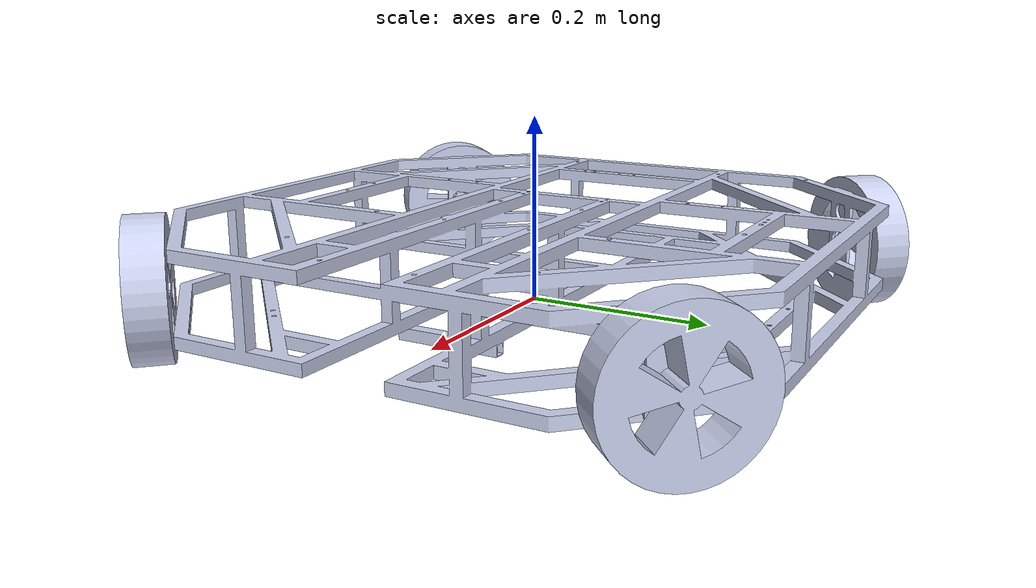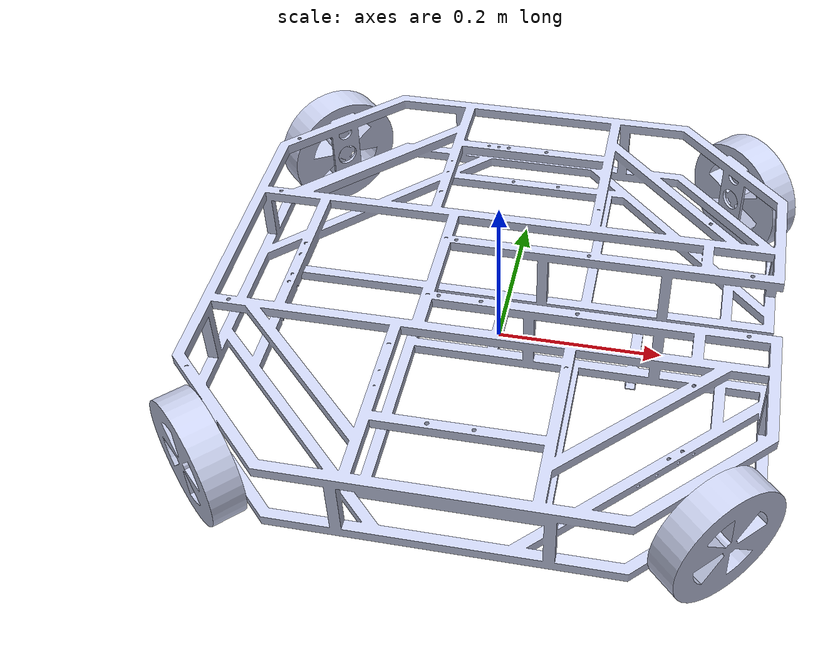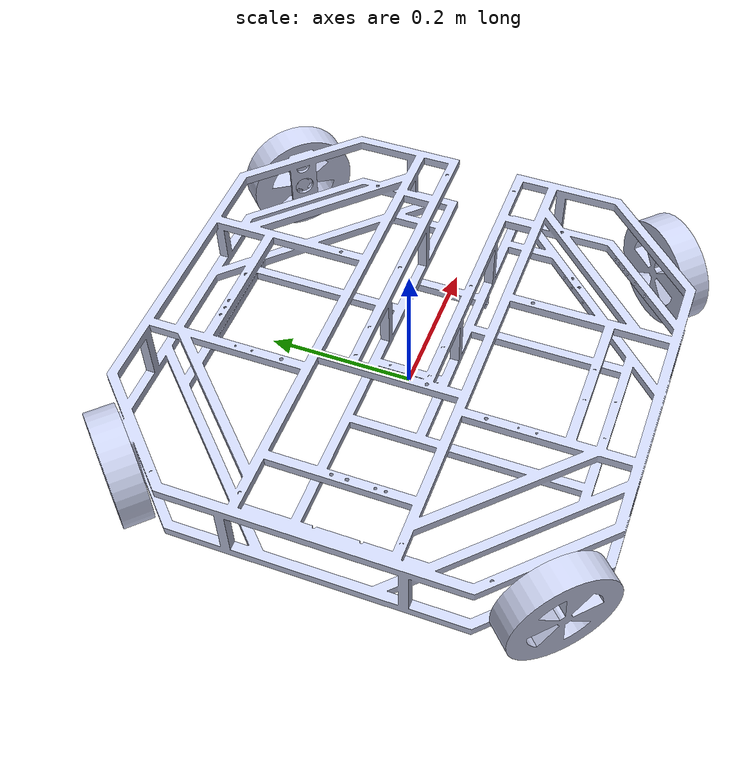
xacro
<?xml version="1.0" encoding="utf-8"?>
<robot xmlns:xacro="http://www.ros.org/wiki/xacro"
  name="final">
  <link name="origin_link"/>
  <link
    name="base_link">
    <inertial>
      <origin
        xyz="-0.00491742822639352 0.00926321697461663 0.0362744796473964"
        rpy="0 0 0" />
      <mass
        value="0.743904097826017" />
      <inertia
        ixx="0.0128815665938208"
        ixy="-0.000108823075691167"
        ixz="1.09592346108527E-05"
        iyy="0.0153938926364957"
        iyz="2.60023505950379E-07"
        izz="0.0280566311336355" />
    </inertial>
    <visual>
      <origin
        xyz="0 0 0"
        rpy="0 0 0" />
      <geometry>
        <mesh
          filename="package://final_description/meshes/base_link.STL" />
      </geometry>
      <material
        name="">
        <color
          rgba="0.792156862745098 0.819607843137255 0.933333333333333 1" />
      </material>
    </visual>
    <collision>
      <origin
        xyz="0 0 0"
        rpy="0 0 0" />
      <geometry>
        <mesh
          filename="package://final_description/meshes/base_link.STL" />
      </geometry>
    </collision>
  </link>
  <link
    name="front_left_wheel_link">
    <inertial>
      <origin
        xyz="2.22044604925031E-16 0 0"
        rpy="0 0 0" />
      <mass
        value="0.575037119313078" />
      <inertia
        ixx="0.00102675759541011"
        ixy="-7.35658295478442E-21"
        ixz="-1.62630325872826E-19"
        iyy="0.00102675759541011"
        iyz="-8.25886164044585E-20"
        izz="0.0019001719590034" />
    </inertial>
    <visual>
      <origin
        xyz="0 0 0"
        rpy="0 0 0" />
      <geometry>
        <mesh
          filename="package://final_description/meshes/wheel_1.STL" />
      </geometry>
      <material
        name="">
        <color
          rgba="0.792156862745098 0.819607843137255 0.933333333333333 1" />
      </material>
    </visual>
    <collision>
      <origin
        xyz="0 0 0"
        rpy="0 0 0" />
      <geometry>
        <mesh
          filename="package://final_description/meshes/wheel_1.STL" />
      </geometry>
    </collision>
  </link>
  <joint
    name="front_left_wheel_joint"
    type="continuous">
    <origin
      xyz="0.28084 -0.28084 0.0212"
      rpy="1.5708 0 0.7854" />
    <parent
      link="base_link" />
    <child
      link="front_left_wheel_link" />
    <axis
      xyz="0 0 -1" />
  </joint>
  <link
    name="front_right_wheel_link">
    <inertial>
      <origin
        xyz="0 0 0"
        rpy="0 0 0" />
      <mass
        value="0.575037119313079" />
      <inertia
        ixx="0.00102675759541011"
        ixy="1.20419641603201E-19"
        ixz="3.25260651745651E-19"
        iyy="0.00102675759541011"
        iyz="-2.33467102916052E-19"
        izz="0.0019001719590034" />
    </inertial>
    <visual>
      <origin
        xyz="0 0 0"
        rpy="0 0 0" />
      <geometry>
        <mesh
          filename="package://final_description/meshes/wheel_2.STL" />
      </geometry>
      <material
        name="">
        <color
          rgba="0.792156862745098 0.819607843137255 0.933333333333333 1" />
      </material>
    </visual>
    <collision>
      <origin
        xyz="0 0 0"
        rpy="0 0 0" />
      <geometry>
        <mesh
          filename="package://final_description/meshes/wheel_2.STL" />
      </geometry>
    </collision>
  </link>
  <joint
    name="front_right_wheel_joint"
    type="continuous">
    <origin
      xyz="0.28084 0.28084 0.0212"
      rpy="1.5708 0 2.3562" />
    <parent
      link="base_link" />
    <child
      link="front_right_wheel_link" />
    <axis
      xyz="0 0 -1" />
  </joint>
  <link
    name="back_right_wheel_link">
    <inertial>
      <origin
        xyz="0 -1.11022302462516E-16 0"
        rpy="0 0 0" />
      <mass
        value="0.575037119313077" />
      <inertia
        ixx="0.00102675759541011"
        ixy="-3.84588227669927E-20"
        ixz="1.0842021724855E-19"
        iyy="0.00102675759541011"
        iyz="-1.16857364936532E-19"
        izz="0.00190017195900339" />
    </inertial>
    <visual>
      <origin
        xyz="0 0 0"
        rpy="0 0 0" />
      <geometry>
        <mesh
          filename="package://final_description/meshes/wheel_3.STL" />
      </geometry>
      <material
        name="">
        <color
          rgba="0.792156862745098 0.819607843137255 0.933333333333333 1" />
      </material>
    </visual>
    <collision>
      <origin
        xyz="0 0 0"
        rpy="0 0 0" />
      <geometry>
        <mesh
          filename="package://final_description/meshes/wheel_3.STL" />
      </geometry>
    </collision>
  </link>
  <joint
    name="back_right_wheel_joint"
    type="continuous">
    <origin
      xyz="-0.28084 0.28084 0.0212"
      rpy="-1.5708 0 0.7854" />
    <parent
      link="base_link" />
    <child
      link="back_right_wheel_link" />
    <axis
      xyz="0 0 -1" />
  </joint>
  <link
    name="back_left_wheel_link">
    <inertial>
      <origin
        xyz="-1.11022302462516E-16 0 -1.11022302462516E-16"
        rpy="0 0 0" />
      <mass
        value="0.575037119313077" />
      <inertia
        ixx="0.00102675759541011"
        ixy="1.71053036112385E-19"
        ixz="3.79470760369927E-19"
        iyy="0.00102675759541011"
        iyz="1.47751191306049E-19"
        izz="0.0019001719590034" />
    </inertial>
    <visual>
      <origin
        xyz="0 0 0"
        rpy="0 0 0" />
      <geometry>
        <mesh
          filename="package://final_description/meshes/wheel-4.STL" />
      </geometry>
      <material
        name="">
        <color
          rgba="0.792156862745098 0.819607843137255 0.933333333333333 1" />
      </material>
    </visual>
    <collision>
      <origin
        xyz="0 0 0"
        rpy="0 0 0" />
      <geometry>
        <mesh
          filename="package://final_description/meshes/wheel-4.STL" />
      </geometry>
    </collision>
  </link>
  <joint
    name="back_left_wheel_joint"
    type="continuous">
    <origin
      xyz="-0.28084 -0.28084 0.0212"
      rpy="1.5708 0 -0.7854" />
    <parent
      link="base_link" />
    <child
      link="back_left_wheel_link" />
    <axis
      xyz="0 0 1" />
  </joint>

  <joint name="base_joint" type="fixed">
    <parent link="origin_link" />
    <child link="base_link" />
    <origin xyz="0 0 0.02"/>
  </joint>

    <gazebo reference="front_left_wheel_link">
      <mu1 value="0.2"/>
      <mu2 value="1.5"/>
      <kp value="10000000.0" />
      <kd value="10000.0" />
      <fdir1 value="0 0 1"/>
      <maxContacts value= "1"/>
        <material
          name="">
          <color
            rgba="0.792156862745098 0.819607843137255 0.933333333333333 1" />
        </material>
    </gazebo>

    <gazebo reference="front_right_wheel_link">
      <mu1 value="0.2"/>
      <mu2 value="1.5"/>
      <kp value="10000000.0" />
      <kd value="10000.0" />
      <fdir1 value="0 0 1"/>
      <maxContacts value= "1"/>
        <material
          name="">
          <color
            rgba="0.792156862745098 0.819607843137255 0.933333333333333 1" />
        </material>
    </gazebo>

    <gazebo reference="back_right_wheel_link">
      <mu1 value="0.2"/>
      <mu2 value="1.5"/>
      <kp value="10000000.0" />
      <kd value="10000.0" />
      <fdir1 value="0 0 1"/>
      <maxContacts value= "1"/>
        <material
          name="">
          <color
            rgba="0.792156862745098 0.819607843137255 0.933333333333333 1" />
        </material>
    </gazebo>

    <gazebo reference="back_left_wheel_link">
      <mu1 value="0.2"/>
      <mu2 value="1.5"/>
      <kp value="10000000.0" />
      <kd value="10000.0" />
      <fdir1 value="0 0 1"/>
      <maxContacts value= "1"/>
        <material
          name="">
          <color
            rgba="0.792156862745098 0.819607843137255 0.933333333333333 1" />
        </material>
    </gazebo>

    <transmission name="front_left_wheel_trans" type="SimpleTransmission">
      <type>transmission_interface/SimpleTransmission</type>
      <actuator name="front_left_wheel_motor">
        <mechanicalReduction>1</mechanicalReduction>
      </actuator>
      <joint name="front_left_wheel_joint">
        <hardwareInterface>hardware_interface/VelocityJointInterface</hardwareInterface>
      </joint>
    </transmission>

    <transmission name="front_right_wheel_trans" type="SimpleTransmission">
      <type>transmission_interface/SimpleTransmission</type>
      <actuator name="front_right_wheel_motor">
        <mechanicalReduction>1</mechanicalReduction>
      </actuator>
      <joint name="front_right_wheel_joint">
        <hardwareInterface>hardware_interface/VelocityJointInterface</hardwareInterface>
      </joint>
    </transmission>

    <transmission name="back_left_wheel_trans" type="SimpleTransmission">
      <type>transmission_interface/SimpleTransmission</type>
      <actuator name="back_left_wheel_motor">
        <mechanicalReduction>1</mechanicalReduction>
      </actuator>
      <joint name="back_left_wheel_joint">
        <hardwareInterface>hardware_interface/VelocityJointInterface</hardwareInterface>
      </joint>
    </transmission>

    <transmission name="back_right_wheel_trans" type="SimpleTransmission">
      <type>transmission_interface/SimpleTransmission</type>
      <actuator name="back_right_wheel_motor">
        <mechanicalReduction>1</mechanicalReduction>
      </actuator>
      <joint name="back_right_wheel_joint">
        <hardwareInterface>hardware_interface/VelocityJointInterface</hardwareInterface>
      </joint>
    </transmission>

  <gazebo>
    <plugin name="gazebo_ros_control" filename="libgazebo_ros_control.so">
    <robotNamespace>final</robotNamespace>
    </plugin>
  </gazebo>

  <gazebo>
    <plugin name="ground_truth" filename="libgazebo_ros_p3d.so">
      <frameName>world</frameName>
      <bodyName>base_link</bodyName>
      <topicName>odom</topicName>
      <updateRate>30.0</updateRate>
    </plugin>
  </gazebo>

</robot>
